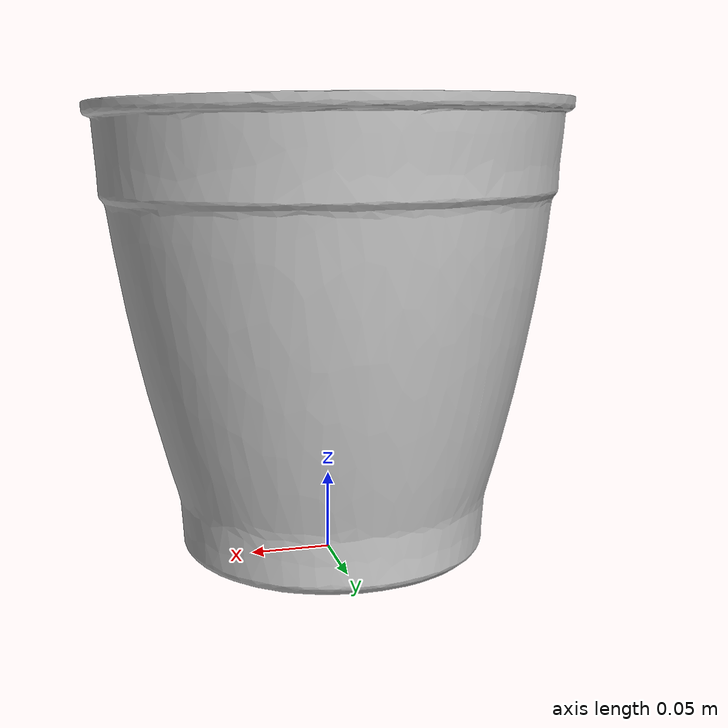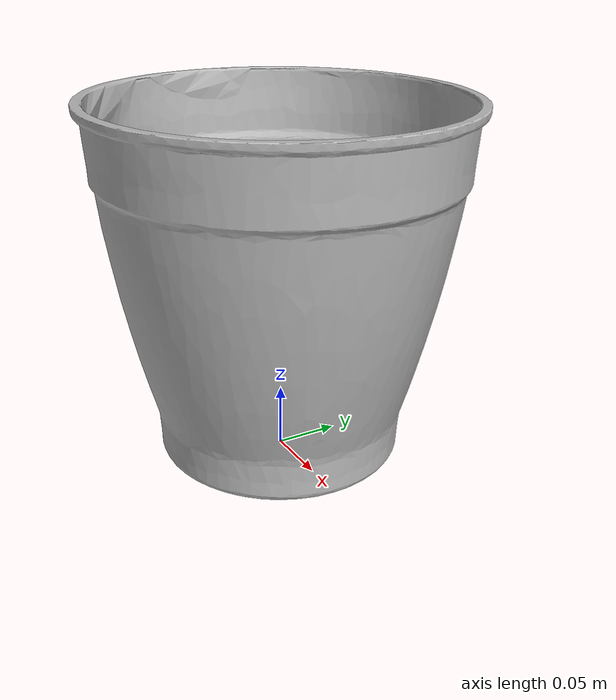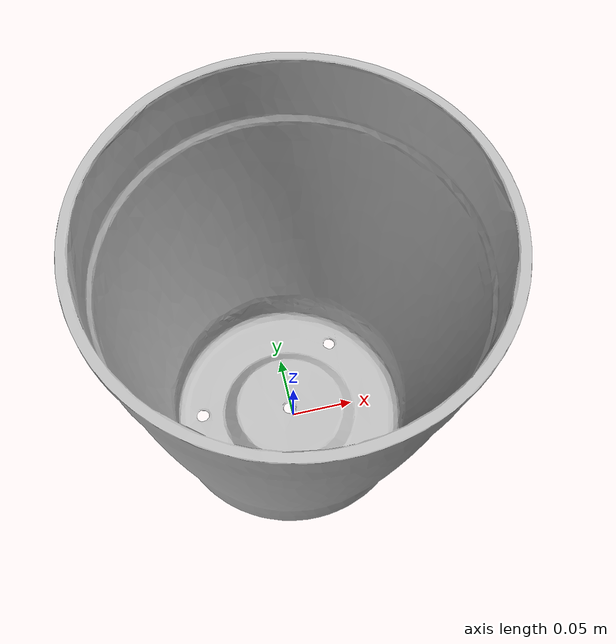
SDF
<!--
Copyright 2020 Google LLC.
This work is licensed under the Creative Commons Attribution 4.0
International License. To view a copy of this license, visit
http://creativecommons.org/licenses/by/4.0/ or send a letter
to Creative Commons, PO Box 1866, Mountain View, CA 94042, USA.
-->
<?xml version="1.0" ?>
<sdf version="1.6">
  <model name="Ecoforms_Plant_Container_12_Pot_Nova">
    <link name="link_0">
      <visual name="visual">
        <geometry>
          <mesh>
            <uri>meshes/model.obj</uri>
          </mesh>
        </geometry>
      </visual>
      <collision name="collision_0">
        <geometry>
          <mesh>
            <uri>meshes/model.obj</uri>
          </mesh>
        </geometry>
      </collision>
    </link>
  </model>
</sdf>
